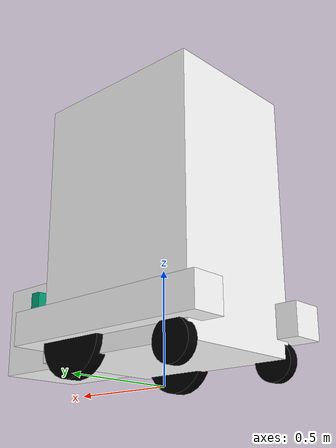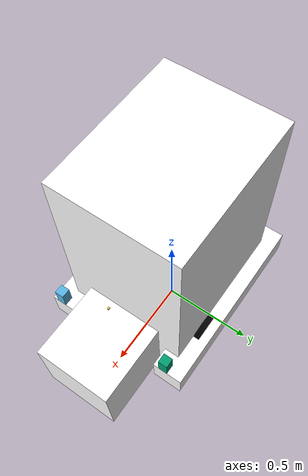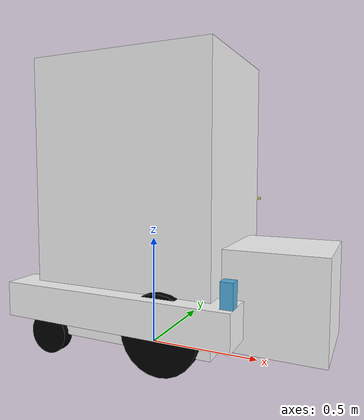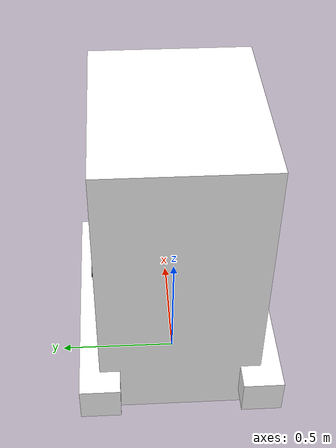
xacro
<?xml version="1.0"?>
<robot xmlns:xacro="http://www.ros.org/wiki/xacro" name="wheelchair">
<xacro:include filename="$(find wheelchair_description)/urdf/wheelchair_description_c300.xacro" />

<gazebo>
  <plugin name="differential_drive_controller" filename="libgazebo_ros_diff_drive.so">
    <alwaysOn>true</alwaysOn>
    <updateRate>50</updateRate>
    <leftJoint>left_main_wheel_joint</leftJoint>
    <rightJoint>right_main_wheel_joint</rightJoint>
    <wheelSeparation>${chair_width}</wheelSeparation>
    <wheelDiameter>${main_wheel_radius*2}</wheelDiameter>
    <torque>30</torque>
    <commandTopic>cmd_vel</commandTopic>
    <odometryTopic>odom_temp</odometryTopic>
    <odometryFrame>odom_temp</odometryFrame>
    <robotBaseFrame>base_footprint</robotBaseFrame>
    <publishTf>0</publishTf>
  </plugin>
</gazebo>

<gazebo>
  <plugin name="quadrotor_imu_sim" filename="libhector_gazebo_ros_imu.so">
    <updateRate>50.0</updateRate>
    <bodyName>imu_link</bodyName>
    <frameId>imu_link</frameId>
    <topicName>imu/data</topicName>
    <rpyOffsets>0 0 0</rpyOffsets> <!-- deprecated -->
    <gaussianNoise>0</gaussianNoise>  <!-- deprecated -->
    <accelDrift>0.5 0.5 0.5</accelDrift>
    <accelGaussianNoise>0.05 0.05 0.05</accelGaussianNoise>
    <rateDrift>0.1 0.1 0.1</rateDrift>
    <rateGaussianNoise>0.05 0.05 0.015</rateGaussianNoise>
    <headingDrift>0.1</headingDrift>
    <headingGaussianNoise>0.05</headingGaussianNoise>
  </plugin>
</gazebo>

<gazebo reference="right_scanner">
    <sensor type="ray" name="head_hokuyo_sensor">
      <pose>0 0 0 0 0 0</pose>
      <visualize>false</visualize>
      <update_rate>40</update_rate>
      <ray>
        <scan>
          <horizontal>
            <samples>720</samples>
            <resolution>1</resolution>
            <min_angle>0</min_angle>
            <max_angle>3.14159265359</max_angle>
          </horizontal>
        </scan>
        <range>
          <min>2</min>
          <max>30.0</max>
          <resolution>0.01</resolution>
        </range>
        <noise>
          <type>gaussian</type>
          <mean>0.0</mean>
          <stddev>0.01</stddev>
        </noise>
      </ray>
      <plugin name="gazebo_ros_head_hokuyo_controller" filename="libgazebo_ros_laser.so">
        <topicName>/wheelchair_lasers/right</topicName>
        <frameName>right_scanner</frameName>
      </plugin>
    </sensor>
  </gazebo>

<gazebo reference="left_scanner">
    <sensor type="ray" name="head_hokuyo_sensor2">
      <pose>0 0 0 0 0 0</pose>
      <visualize>false</visualize>
      <update_rate>40</update_rate>
      <ray>
        <scan>
          <horizontal>
            <samples>720</samples>
            <resolution>1</resolution>
            <min_angle>0</min_angle>
            <max_angle>3.14159265359</max_angle>
          </horizontal>
        </scan>
        <range>
          <min>2</min>
          <max>30.0</max>
          <resolution>0.01</resolution>
        </range>
        <noise>
          <type>gaussian</type>

          <mean>0.0</mean>
          <stddev>0.01</stddev>
        </noise>
      </ray>
      <plugin name="gazebo_ros_head_hokuyo_controller2" filename="libgazebo_ros_laser.so">
        <topicName>/wheelchair_lasers/left</topicName>
        <frameName>left_scanner</frameName>
      </plugin>
    </sensor>
  </gazebo>

</robot>

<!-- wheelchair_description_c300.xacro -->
<robot xmlns:xacro="http://www.ros.org/wiki/xacro" name="wheelchair">
  <xacro:property name="PI" value="3.14159265359" />

  <xacro:property name="chair_width" value="0.643" /> <!-- From back wheel right joint to back wheel left joint -->
  <xacro:property name="chair_length" value="0.812" /> <!-- From back wheel joint to back wheel joint -->
  <xacro:property name="chair_height" value="1.191" /> <!-- From back wheel joint to head rest -->
  <xacro:property name="chair_weight" value="10.0" />

  <xacro:property name="legs_width" value="0.4064" />
  <xacro:property name="legs_length" value="0.4064" />
  <xacro:property name="legs_height" value="0.4064" />
  <xacro:property name="legs_weight" value="2.0" />

  <xacro:property name="main_wheel_length" value="0.065" />
  <xacro:property name="main_wheel_radius" value=".165" />
  <xacro:property name="main_wheel_weight" value="2.0" />

  <xacro:property name="small_wheel_radius" value=".089" />
  <xacro:property name="small_wheel_length" value=".05" />
  <xacro:property name="small_wheel_weight" value="1.0" />

  <xacro:macro name="box_intertia" params="height length width weight" >
    <inertia ixx="${1/12 * weight * (height + length)}" ixy="0" ixz="0" iyy="${1/12 * weight * (width + length)}" iyz="0" izz="${1/12 * weight * (width + height)}" />
  </xacro:macro>

  <xacro:macro name="cylinder_intertia" params="length radius weight" >
    <inertia ixx="${1/12 * weight * (3 * radius * radius + length * length)}" ixy="0" ixz="0" iyy="${1/12 * weight * (3 * radius*radius + length*length)}" iyz="0" izz="${1/2 * weight * radius*radius}" />
  </xacro:macro>

  <link name="base_footprint">
    <visual>
      <origin xyz="0 0 0" rpy="0 0 0" />
        <geometry>
          <box size="0.001 0.001 0.001" />
      </geometry>
    </visual>
  </link>

  <joint name="base_footprint_joint" type="fixed">
    <origin xyz=" 0 0 0.7" rpy="0 0 0"/>
    <parent link="base_footprint"/>
    <child link="base_link"/>
  </joint>

  <link name="base_link">
    <visual>
      <geometry>
        <box size="${chair_length} ${chair_width} ${chair_height}"/>
      </geometry>
      <material name="white">
        <color rgba="1 1 1 1"/>
      </material>
    </visual>
    <collision>
      <geometry>
        <box size="${chair_length} ${chair_width} ${chair_height}"/>
      </geometry>
    </collision>
    <inertial>
      <mass value="${chair_weight}"/>
      <xacro:box_intertia height="${chair_height}" length="${chair_length}" width="${chair_width}" weight="${chair_weight}" />
    </inertial>
  </link>

  <link name="imu">
    <inertial>
      <mass value="0.01"/>
      <origin xyz="0 0 0"/>
      <inertia ixx="1.0E-6" ixy="0" ixz="0" iyy="1.0E-6" iyz="0" izz="1.0E-6"/>
    </inertial>
    <visual>
      <origin rpy="0 0 0" xyz="0 0 0"/>
      <geometry>
        <box size="0.01 0.01 0.01"/>
      </geometry>
    </visual>
  </link>

  <joint name="imu_joint" type="fixed">
    <parent link="base_link"/>
    <child link="imu"/>
    <origin xyz="0 0 0" rpy="0 0 ${PI}"/>
  </joint>

  <link name="flow_sensor">
      <inertial>
        <mass value="0.01"/>
        <origin xyz="0 0 0"/>
        <inertia ixx="1.0E-6" ixy="0" ixz="0" iyy="1.0E-6" iyz="0" izz="1.0E-6"/>
      </inertial>
      <visual>
        <origin rpy="0 0 0" xyz="0 0 0"/>
        <geometry>
          <box size="0.01 0.01 0.01"/>
        </geometry>
      </visual>
    </link>

    <joint name="flow_joint" type="fixed">
      <parent link="base_link"/>
      <child link="flow_sensor"/>
      <origin xyz="0.5 0 0" rpy="0 0 0"/>
    </joint>

<!--Legs -->
  <link name="legs">
    <visual>
      <geometry>
        <box size="${legs_length} ${legs_width} ${legs_height}"/>
      </geometry>
      <material name="white">
        <color rgba="1 1 1 1"/>
      </material>
    </visual>
    <collision>
      <geometry>
        <box size="${legs_length} ${legs_width} ${legs_height}"/>
      </geometry>
    </collision>
    <inertial>
      <mass value="${legs_weight}"/>
      <xacro:box_intertia height="${legs_height}" length="${legs_length}" width="${legs_width}" weight="${legs_weight}" />
    </inertial>
  </link>

    <joint name="legs_joint" type="fixed">
    <axis xyz="0 0 0"/>
    <parent link="base_link"/>
    <child link="legs"/>
    <origin rpy="0 0 0" xyz="${chair_length/2 + 0.4064/2} 0 -${chair_height/2 - 0.4064/2}"/> <!--chair_height/4 + chair_height/8 because this is relative to the center of the bar -->
  </joint>

<!--Right Bar -->
  <link name="left_bar">
    <visual>
      <geometry>
        <box size="${chair_length + chair_length/4} ${chair_width/4} ${chair_height/8}"/>
      </geometry>
      <material name="white">
        <color rgba="1 1 1 1"/>
      </material>
    </visual>
    <collision>
      <geometry>
        <box size="${chair_length + chair_length/4} ${chair_width/4} ${chair_height/8}"/>
      </geometry>
    </collision>
    <inertial>
      <mass value="2.0"/>
      <inertia ixx="1e-3" ixy="1e-3" ixz="1e-3" iyy="1e-3" iyz="1e-3" izz="1e-3"/>
    </inertial>
  </link>

  <joint name="left_bar_joint" type="fixed">
    <axis xyz="0 0 0"/>
    <parent link="base_link"/>
    <child link="left_bar"/>
    <origin rpy="0 0 0" xyz="0.0 ${chair_width/2} -${chair_height/4 + chair_height/8}"/> <!--chair_height/4 + chair_height/8 because this is relative to the center of the bar -->
  </joint>

<!--Left Bar -->

  <link name="right_bar">
    <visual>
      <geometry>
        <box size="${chair_length + chair_length/4} ${chair_width/4} ${chair_height/8}"/>
      </geometry>
      <material name="white">
        <color rgba="1 1 1 1"/>
      </material>
    </visual>
    <collision>
      <geometry>
        <box size="${chair_length + chair_length/4} ${chair_width/4} ${chair_height/8}"/>
      </geometry>
    </collision>
    <inertial>
      <mass value="2.0"/>
      <inertia ixx="1e-3" ixy="1e-3" ixz="1e-3" iyy="1e-3" iyz="1e-3" izz="1e-3"/>
    </inertial>
  </link>

  <joint name="right_bar_joint" type="fixed">
    <axis xyz="0 0 0"/>
    <parent link="base_link"/>
    <child link="right_bar"/>
    <origin rpy="0 0 0" xyz="0.0 -${chair_width/2} -${chair_height/4 + chair_height/8}"/> <!--chair_height/4 + chair_height/8 because this is relative to the center of the bar -->
  </joint>

<!--Main Wheels -->

  <joint name="left_main_wheel_joint" type="continuous">
    <axis xyz="0 0 -1"/>
    <parent link="left_bar"/>
    <child link="left_main_wheel"/>
    <origin rpy="1.57075 0 0" xyz="0.2 0.0 -${chair_height/8-0.076}"/>
  </joint>

  <link name="left_main_wheel">
    <visual>
      <geometry>
        <cylinder length="${main_wheel_length}" radius="${main_wheel_radius}"/>
      </geometry>
      <material name="white">
        <color rgba="0 0 0 1"/>
      </material>
    </visual>
    <collision>
      <geometry>
        <cylinder length="${main_wheel_length}" radius="${main_wheel_radius}"/>
      </geometry>
    </collision>
    <inertial>
      <mass value="${main_wheel_weight}"/>
      <xacro:cylinder_intertia length="${main_wheel_length}" radius="${main_wheel_radius}" weight="${main_wheel_weight}" />
    </inertial>
  </link>

  <joint name="right_main_wheel_joint" type="continuous">
    <axis xyz="0 0 -1"/>
    <parent link="right_bar"/>
    <child link="right_main_wheel"/>
    <origin rpy="1.57075 0 0" xyz="0.2 0.0 -${chair_height/8-0.076}"/>
  </joint>

  <link name="right_main_wheel">
    <visual>
      <geometry>
        <cylinder length="${main_wheel_length}" radius="${main_wheel_radius}"/>
      </geometry>
      <material name="white">
        <color rgba="0 0 0 1"/>
      </material>
    </visual>
    <collision>
      <geometry>
        <cylinder length="${main_wheel_length}" radius="${main_wheel_radius}"/>
      </geometry>
    </collision>
    <inertial>
      <mass value="${main_wheel_weight}"/>
      <xacro:cylinder_intertia length="${main_wheel_length}" radius="${main_wheel_radius}" weight="${main_wheel_weight}" />
    </inertial>
  </link>

<!--Laser Scanners -->

  <link name="left_scanner">
    <visual>
      <origin xyz="0.0 0 0" rpy="0 0 0"/>
      <geometry>
        <box size="0.05 0.05 0.1"/>
      </geometry>
    </visual>
    <collision>
      <geometry>
        <box size="0.05 0.05 0.1"/>
      </geometry>
    </collision>
    <inertial>
      <mass value="1e-5" />
      <inertia ixx="1e-3" ixy="0" ixz="0" iyy="1e-3" iyz="0" izz="1e-3" />
    </inertial>
  </link>
  <joint name="left_scanner_joint" type="fixed">
    <axis xyz="0 0 0" />
    <origin xyz="${chair_length/2 - 0.05/2 + chair_length/8} -${0.05/2} ${chair_height/16 + 0.05}" rpy="0 0 1.5707"/>
    <parent link="left_bar"/>
    <child link="right_scanner"/> <!-- TODO UNDO THIS! -->
  </joint>

  <link name="right_scanner">
    <visual>
      <origin xyz="0.0 0 0" rpy="0 0 0"/>
      <geometry>
        <box size="0.05 0.05 0.1"/>
      </geometry>
    </visual>
    <collision>
      <geometry>
        <box size="0.05 0.05 0.1"/>
      </geometry>
    </collision>
    <inertial>
      <mass value="1e-5" />
      <inertia ixx="1e-3" ixy="0" ixz="0" iyy="1e-3" iyz="0" izz="1e-3" />
    </inertial>
  </link>

  <joint name="right_scanner_joint" type="fixed">
    <axis xyz="0 0 0" />
    <origin xyz="${chair_length/2 - 0.05/2 + chair_length/8} -${0.05/2} ${chair_height/16 + 0.05}" rpy="0 0 -1.5707"/>
    <parent link="right_bar"/>
    <child link="left_scanner"/> <!-- TODO UNDO THIS! -->
  </joint>

<!--back Wheels -->
  <link name="back_left_swivel">
    <visual>
      <geometry>
        <cylinder length="0.065" radius="0.01"/>
      </geometry>
      <material name="white">
        <color rgba="0 0 0 1"/>
      </material>
    </visual>
    <collision>
      <geometry>
        <cylinder length="0.065" radius="0.01"/>
      </geometry>
    </collision>
    <inertial>
      <mass value=".1"/>
      <xacro:cylinder_intertia length="0.065" radius="0.01" weight="0.1" />
    </inertial>
  </link>

   <joint name="back_left_swivel_joint" type="continuous">
    <axis xyz="0 0 1"/>
    <parent link="left_bar"/>
    <child link="back_left_swivel"/>
    <origin rpy="0 0 0" xyz="-${chair_length/2} 0.0 -${chair_height/8}"/>
    <dynamics damping="0.0" friction="0.5" />
  </joint>

  <joint name="back_left_wheel_joint" type="continuous">
    <axis xyz="0 0 1"/>
    <parent link="back_left_swivel"/>
    <child link="back_left_wheel"/>
    <origin rpy="1.57075 0 0" xyz="0.065 0 0"/>
    <dynamics damping="0" friction="0.5" />
  </joint>

  <link name="back_left_wheel">
    <visual>
      <geometry>
        <cylinder length="${small_wheel_length}" radius="${small_wheel_radius}"/>
      </geometry>
      <material name="white">
        <color rgba="0 0 0 1"/>
      </material>
    </visual>
    <collision>
      <geometry>
        <cylinder length="${small_wheel_length}" radius="${small_wheel_radius}"/>
      </geometry>
      <surface>
        <friction>
          <ode>
            <mu>1.0</mu>
            <mu2>1.0</mu2>
          </ode>
        </friction>
      </surface>
    </collision>
    <inertial>
      <mass value="${small_wheel_weight}"/>
      <xacro:cylinder_intertia length="${small_wheel_length}" radius="${small_wheel_radius}" weight="${small_wheel_weight}" />
    </inertial>
  </link>
  <link name="back_right_swivel">
    <visual>
      <geometry>
        <cylinder length="0.065" radius="0.01"/>
      </geometry>
      <material name="white">
        <color rgba="0 0 0 1"/>
      </material>
    </visual>
    <collision>
      <geometry>
        <cylinder length="0.065" radius="0.01"/>
      </geometry>
    </collision>
    <inertial>
      <mass value=".1"/>
      <xacro:cylinder_intertia length="0.065" radius="0.01" weight="0.1" />
    </inertial>
  </link>

   <joint name="back_right_swivel_joint" type="continuous">
    <axis xyz="0 0 1"/>
    <parent link="right_bar"/>
    <child link="back_right_swivel"/>
    <origin rpy="0 0 0" xyz="-${chair_length/2} 0.0 -${chair_height/8}"/>
    <dynamics damping="0.0" friction="0.5" />
  </joint>

  <joint name="back_right_wheel_joint" type="continuous">
    <axis xyz="0 0 1"/>
    <parent link="back_right_swivel"/>
    <child link="back_right_wheel"/>
    <origin rpy="1.57075 0 0" xyz="0.065 0 0"/>
    <dynamics damping="0" friction="0.5" />
  </joint>

  <link name="back_right_wheel">
    <visual>
      <geometry>
        <cylinder length="0.05" radius="${small_wheel_radius}"/>
      </geometry>
      <material name="white">
        <color rgba="0 0 0 1"/>
      </material>
    </visual>
    <collision>
      <geometry>
        <cylinder length="0.05" radius="${small_wheel_radius}"/>
      </geometry>
      <surface>
        <friction>
          <ode>
            <mu>1.0</mu>
            <mu2>1.0</mu2>
          </ode>
        </friction>
      </surface>
    </collision>
    <inertial>
      <mass value="${small_wheel_weight}"/>
      <xacro:cylinder_intertia length="${small_wheel_length}" radius="${small_wheel_radius}" weight="${small_wheel_weight}" />
    </inertial>
  </link>
<!--Rear Wheels -->

</robot>
